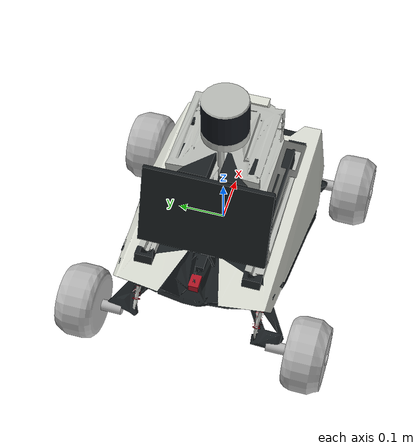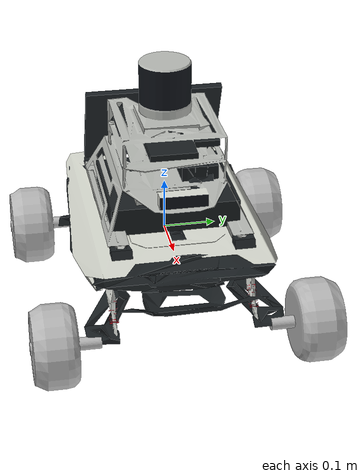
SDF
<?xml version='1.0' encoding='utf-8'?>
<sdf version="1.6">
  <model name="scout_lod10k_preview">
    <static>true</static>
    <link name="base_link">
      <visual name="base_link_0">
        <pose>0 0 0 1.57000005 -0 -1.57000005</pose>
        <geometry>
          <mesh>
            <uri>model://scout_description/meshes/lod10k/body.dae</uri>
          </mesh>
        </geometry>
      </visual>
      <visual name="box_link_0">
        <pose>0 0 0.0549999997 0 -0 -0.00318509736</pose>
        <geometry>
          <mesh>
            <uri>model://scout_description/meshes/lod10k/payload.dae</uri>
          </mesh>
        </geometry>
      </visual>
      <visual name="front_left_wheel_link_0">
        <pose>0.231975496 0.208251506 -0.100997999 -1.57000005 -0 0</pose>
        <geometry>
          <mesh>
            <uri>model://scout_description/meshes/lod10k/wheel.dae</uri>
          </mesh>
        </geometry>
      </visual>
      <visual name="front_right_wheel_link_0">
        <pose>0.231975496 -0.208251506 -0.0999979973 1.57000005 -0 0</pose>
        <geometry>
          <mesh>
            <uri>model://scout_description/meshes/lod10k/wheel.dae</uri>
          </mesh>
        </geometry>
      </visual>
      <visual name="rear_left_wheel_link_0">
        <pose>-0.231975496 0.208251506 -0.100997999 -1.57000005 -0 0</pose>
        <geometry>
          <mesh>
            <uri>model://scout_description/meshes/lod10k/wheel.dae</uri>
          </mesh>
        </geometry>
      </visual>
      <visual name="rear_right_wheel_link_0">
        <pose>-0.231975496 -0.208251506 -0.0999979973 1.57000005 -0 0</pose>
        <geometry>
          <mesh>
            <uri>model://scout_description/meshes/lod10k/wheel.dae</uri>
          </mesh>
        </geometry>
      </visual>
    </link>
  </model>
</sdf>
